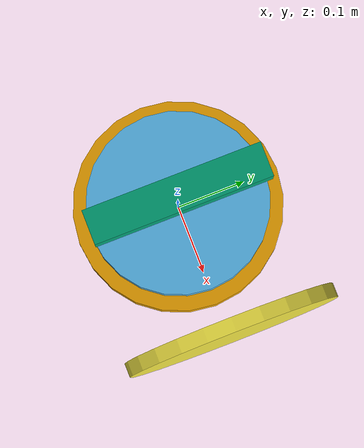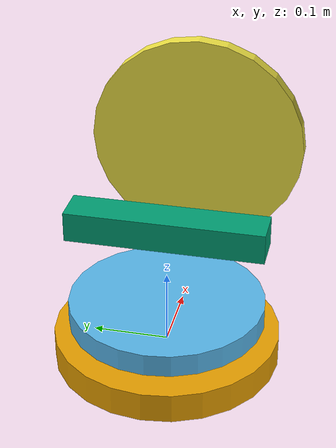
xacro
<?xml version="1.0"?>
<robot xmlns:xacro="http://www.ros.org/wiki/xacro" name="mergen">
  <xacro:property name="pi" value="3.141592653589793" />

  <link name="base_link">
    <visual><geometry><cylinder radius="0.15" length="0.04"/></geometry></visual>
    <collision><geometry><cylinder radius="0.15" length="0.04"/></geometry></collision>
    <inertial><mass value="3.0"/><inertia ixx="0.02" iyy="0.02" izz="0.03" ixy="0" ixz="0" iyz="0"/></inertial>
  </link>

  <link name="azimuth_platform">
    <visual><geometry><cylinder radius="0.13" length="0.03"/></geometry></visual>
    <collision><geometry><cylinder radius="0.13" length="0.03"/></geometry></collision>
    <inertial><mass value="2.0"/><inertia ixx="0.015" iyy="0.015" izz="0.02" ixy="0" ixz="0" iyz="0"/></inertial>
  </link>

  <joint name="azimuth_joint" type="continuous">
    <parent link="base_link"/>
    <child link="azimuth_platform"/>
    <origin xyz="0 0 0.05" rpy="0 0 0"/>
    <axis xyz="0 0 1"/>
  </joint>

  <link name="elevation_arm">
    <visual><geometry><box size="0.05 0.26 0.04"/></geometry></visual>
    <collision><geometry><box size="0.05 0.26 0.04"/></geometry></collision>
    <inertial><mass value="1.5"/><inertia ixx="0.01" iyy="0.01" izz="0.01" ixy="0" ixz="0" iyz="0"/></inertial>
  </link>

  <joint name="elevation_joint" type="revolute">
    <parent link="azimuth_platform"/>
    <child link="elevation_arm"/>
    <origin xyz="0 0 0.12" rpy="0 0 0"/>
    <axis xyz="0 1 0"/>
    <limit lower="0" upper="${pi / 2}" effort="30" velocity="1.0"/>
  </joint>

  <link name="antenna_dish">
    <visual><origin xyz="0.12 0 0" rpy="0 1.5708 0"/><geometry><cylinder radius="0.15" length="0.02"/></geometry></visual>
    <collision><origin xyz="0.12 0 0" rpy="0 1.5708 0"/><geometry><cylinder radius="0.15" length="0.02"/></geometry></collision>
    <inertial><mass value="1.0"/><inertia ixx="0.006" iyy="0.006" izz="0.006" ixy="0" ixz="0" iyz="0"/></inertial>
  </link>

  <joint name="dish_fixed_joint" type="fixed">
    <parent link="elevation_arm"/>
    <child link="antenna_dish"/>
    <origin xyz="0.08 0 0.03" rpy="0 0 0"/>
  </joint>

  <link name="imu_link"/>
  <joint name="imu_fixed_joint" type="fixed">
    <parent link="azimuth_platform"/>
    <child link="imu_link"/>
    <origin xyz="0 0 0.08" rpy="0 0 0"/>
  </joint>
</robot>
